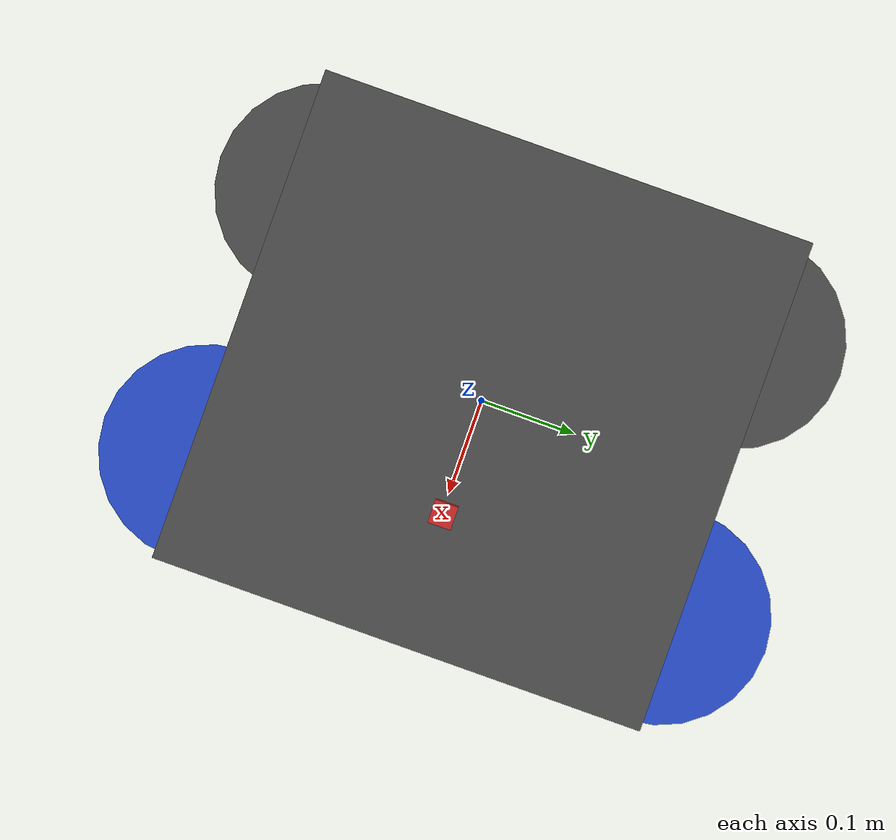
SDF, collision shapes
<?xml version='1.0'?>
<sdf version='1.5'>
  <model name='iris'>
    <pose>0 0 0.194923 0 0 0</pose>
     <link name="lidar_link">
      <pose>0.1 0 0.2 0 0 0</pose>
      <inertial>
        <mass>0.0001</mass>  <!-- 小质量 -->
        <inertia>
          <ixx>0.00001</ixx>
          <ixy>0</ixy>
          <ixz>0</ixz>
          <iyy>0.00001</iyy>
          <iyz>0</iyz>
          <izz>0.00001</izz>
        </inertia>
      </inertial>

      <collision name="front_camera_collision">
        <geometry>
          <box>
            <size>0.02 0.02 0.02</size>  <!-- 小碰撞盒 -->
          </box>
        </geometry>
      </collision>
      <visual name="front_camera_visual">
        <geometry>
          <box>
            <size>0.02 0.02 0.02</size>
          </box>
        </geometry>
        <material>
          <script>
            <name>Gazebo/Red</name>
            <uri>file://media/materials/scripts/gazebo.material</uri>
          </script>
        </material>
      </visual>
       <sensor name="lidar_sensor" type="ray">
        <pose>0 0 0 0 0 0</pose>
        <visualize>false</visualize>
        <update_rate>20</update_rate>
        <ray>
          <scan>
            <horizontal>
              <samples>720</samples>
              <resolution>1</resolution>
              <min_angle>-3.14</min_angle>
              <max_angle>3.14</max_angle>
            </horizontal>
            <vertical>
              <samples>21</samples>
              <resolution>1</resolution>
              <min_angle>-0.2618</min_angle>
              <max_angle>0.2618</max_angle>
            </vertical>
          </scan>
          <range>
            <min>0.1</min>
            <max>10.0</max>
            <resolution>0.01</resolution>
          </range>
          <noise>
            <type>gaussian</type>
            <mean>0.0</mean>
            <stddev>0.01</stddev>
          </noise>
        </ray>
        <plugin name="gazebo_ros_gpu_laser_controller" filename="libgazebo_ros_gpu_laser.so">
          <topicName>/scan</topicName>
          <frameName>/lidar_link</frameName>
        </plugin>
      </sensor>
    </link>

    <joint name="front_camera_joint" type="fixed">
      <parent>base_link</parent>
      <child>lidar_link</child>
    </joint>

    <link name='base_link'>
      <velocity_decay>
        <linear>0.0</linear>
        <angular>0.0</angular>
      </velocity_decay>
      <inertial>
        <pose>0 0 0 0 0 0</pose>
        <mass>1.5</mass>
        <inertia>
          <ixx>0.008</ixx>
          <ixy>0</ixy>
          <ixz>0</ixz>
          <iyy>0.015</iyy>
          <iyz>0</iyz>
          <izz>0.017</izz>
        </inertia>
      </inertial>
      <collision name='base_link_collision'>
        <pose>0 0 -0.08 0 0 0</pose>
        <geometry>
          <box>
            <size>0.47 0.47 0.23</size>
          </box>
        </geometry>
        <surface>
          <contact>
            <ode>
              <max_vel>100.0</max_vel>
              <min_depth>0.001</min_depth>
            </ode>
          </contact>
          <friction>
            <ode>
              <mu>1000.0</mu>
              <mu2>1000.0</mu2>
            </ode>
          </friction>
        </surface>
      </collision>
      <visual name='base_link_visual'>
        <geometry>
          <mesh>
            <uri>model://iris_with_standoffs/meshes/iris.dae</uri>
          </mesh>
        </geometry>
        <material>
          <script>
            <name>Gazebo/DarkGrey</name>
            <uri>file://media/materials/scripts/gazebo.material</uri>
          </script>
        </material>
      </visual>

      <visual name='front_left_leg_visual'>
        <pose>0.123 0.22 -0.11 0 0 0</pose>
        <geometry>
          <cylinder>
            <radius>0.005</radius>
            <length>0.17</length>
          </cylinder>
        </geometry>
        <material>
          <script>
            <name>Gazebo/FlatBlack</name>
            <uri>file://media/materials/scripts/gazebo.material</uri>
          </script>
        </material>
      </visual>
      <visual name='front_right_leg_visual'>
        <pose>0.123 -0.22 -0.11 0 0 0</pose>
        <geometry>
          <cylinder>
            <radius>0.005</radius>
            <length>0.17</length>
          </cylinder>
        </geometry>
        <material>
          <script>
            <name>Gazebo/FlatBlack</name>
            <uri>file://media/materials/scripts/gazebo.material</uri>
          </script>
        </material>
      </visual>
      <visual name='rear_left_leg_visual'>
        <pose>-0.140 0.21 -0.11 0 0 0</pose>
        <geometry>
          <cylinder>
            <radius>0.005</radius>
            <length>0.17</length>
          </cylinder>
        </geometry>
        <material>
          <script>
            <name>Gazebo/FlatBlack</name>
            <uri>file://media/materials/scripts/gazebo.material</uri>
          </script>
        </material>
      </visual>
      <visual name='rear_right_leg_visual'>
        <pose>-0.140 -0.21 -0.11 0 0 0</pose>
        <geometry>
          <cylinder>
            <radius>0.005</radius>
            <length>0.17</length>
          </cylinder>
        </geometry>
        <material>
          <script>
            <name>Gazebo/FlatBlack</name>
            <uri>file://media/materials/scripts/gazebo.material</uri>
          </script>
        </material>
      </visual>
    </link>
    <link name='iris/ground_truth/odometry_sensorgt_link'>
      <pose>0 0 0 0 -0 0</pose>
      <inertial>
        <pose>0 0 0 0 -0 0</pose>
        <mass>0.15</mass>
        <inertia>
          <ixx>0.0001</ixx>
          <ixy>0</ixy>
          <ixz>0</ixz>
          <iyy>0.0002</iyy>
          <iyz>0</iyz>
          <izz>0.0002</izz>
        </inertia>
      </inertial>
    </link>
    <joint name='iris/ground_truth/odometry_sensorgt_joint' type='revolute'>
      <child>iris/ground_truth/odometry_sensorgt_link</child>
      <parent>base_link</parent>
      <axis>
        <xyz>0 0 1</xyz>
        <limit>
          <lower>0</lower>
          <upper>0</upper>
          <effort>0</effort>
          <velocity>0</velocity>
        </limit>
        <dynamics>
          <damping>1.0</damping>
        </dynamics>
        <use_parent_model_frame>1</use_parent_model_frame>
      </axis>
      <physics>
        <ode>
          <implicit_spring_damper>1</implicit_spring_damper>
        </ode>
      </physics>
    </joint>
    <link name='iris/imu_link'>
      <inertial>
        <pose>0 0 0 0 0 0</pose>
        <mass>0.15</mass>
        <inertia>
          <ixx>0.00001</ixx>
          <ixy>0</ixy>
          <ixz>0</ixz>
          <iyy>0.00002</iyy>
          <iyz>0</iyz>
          <izz>0.00002</izz>
        </inertia>
      </inertial>
      <sensor name="imu_sensor" type="imu">
        <pose>0 0 0 3.141593 0 0</pose>
        <always_on>1</always_on>
        <update_rate>1000.0</update_rate>
      </sensor>
    </link>
    <joint name='iris/imu_joint' type='revolute'>
      <child>iris/imu_link</child>
      <parent>base_link</parent>
      <axis>
        <xyz>0 0 1</xyz>
        <limit>
          <lower>0</lower>
          <upper>0</upper>
          <effort>0</effort>
          <velocity>0</velocity>
        </limit>
        <dynamics>
          <damping>1.0</damping>
        </dynamics>
        <use_parent_model_frame>1</use_parent_model_frame>
      </axis>
      <physics>
        <ode>
          <implicit_spring_damper>1</implicit_spring_damper>
        </ode>
      </physics>
    </joint>
    <link name='rotor_0'>
      <pose>0.13 -0.22 0.023 0 -0 0</pose>
      <inertial>
        <pose>0 0 0 0 -0 0</pose>
        <mass>0.025</mass>
        <inertia>
          <ixx>9.75e-06</ixx>
          <ixy>0</ixy>
          <ixz>0</ixz>
          <iyy>0.000166704</iyy>
          <iyz>0</iyz>
          <izz>0.000167604</izz>
        </inertia>
      </inertial>
      <collision name='rotor_0_collision'>
        <pose>0 0 0 0 -0 0</pose>
        <geometry>
          <cylinder>
            <length>0.005</length>
            <radius>0.1</radius>
          </cylinder>
        </geometry>
        <surface>
          <contact>
            <ode/>
          </contact>
          <friction>
            <ode/>
          </friction>
        </surface>
      </collision>
      <visual name='rotor_0_visual'>
        <pose>0 0 0 0 -0 0</pose>
        <geometry>
          <mesh>
            <scale>1 1 1</scale>
            <uri>model://iris_with_standoffs/meshes/iris_prop_ccw.dae</uri>
          </mesh>
        </geometry>
        <material>
          <script>
            <name>Gazebo/Blue</name>
            <uri>file://media/materials/scripts/gazebo.material</uri>
          </script>
        </material>
      </visual>
      <gravity>1</gravity>
      <velocity_decay/>
      <self_collide>0</self_collide>
    </link>
    <joint name='rotor_0_joint' type='revolute'>
      <child>rotor_0</child>
      <parent>base_link</parent>
      <axis>
        <xyz>0 0 1</xyz>
        <limit>
          <lower>-100</lower>
          <upper>100</upper>
           <effort>100.0</effort>
      <velocity>1000.0</velocity>
        </limit>
        <dynamics>
          <damping>0.004</damping>
        </dynamics>
        <use_parent_model_frame>1</use_parent_model_frame>
      </axis>
      <physics>
        <ode>
          <implicit_spring_damper>1</implicit_spring_damper>
        </ode>
      </physics>
    </joint>
    <link name='rotor_1'>
      <pose>-0.13 0.2 0.023 0 -0 0</pose>
      <inertial>
        <pose>0 0 0 0 -0 0</pose>
        <mass>0.025</mass>
        <inertia>
          <ixx>9.75e-06</ixx>
          <ixy>0</ixy>
          <ixz>0</ixz>
          <iyy>0.000166704</iyy>
          <iyz>0</iyz>
          <izz>0.000167604</izz>
        </inertia>
      </inertial>
      <collision name='rotor_1_collision'>
        <pose>0 0 0 0 -0 0</pose>
        <geometry>
          <cylinder>
            <length>0.005</length>
            <radius>0.1</radius>
          </cylinder>
        </geometry>
        <surface>
          <contact>
            <ode/>
          </contact>
          <friction>
            <ode/>
          </friction>
        </surface>
      </collision>
      <visual name='rotor_1_visual'>
        <pose>0 0 0 0 -0 0</pose>
        <geometry>
          <mesh>
            <scale>1 1 1</scale>
            <uri>model://iris_with_standoffs/meshes/iris_prop_ccw.dae</uri>
          </mesh>
        </geometry>
        <material>
          <script>
            <name>Gazebo/DarkGrey</name>
            <uri>file://media/materials/scripts/gazebo.material</uri>
          </script>
        </material>
      </visual>
      <gravity>1</gravity>
      <velocity_decay/>
      <self_collide>0</self_collide>
    </link>
    <joint name='rotor_1_joint' type='revolute'>
      <child>rotor_1</child>
      <parent>base_link</parent>
      <axis>
        <xyz>0 0 1</xyz>
        <limit>
          <lower>-100</lower>
          <upper>100</upper>
          <effort>100.0</effort>
          <velocity>1000.0</velocity>
        </limit>
        <dynamics>
          <damping>0.004</damping>
        </dynamics>
        <use_parent_model_frame>1</use_parent_model_frame>
      </axis>
      <physics>
        <ode>
          <implicit_spring_damper>1</implicit_spring_damper>
        </ode>
      </physics>
    </joint>
    <link name='rotor_2'>
      <pose>0.13 0.22 0.023 0 -0 0</pose>
      <inertial>
        <pose>0 0 0 0 -0 0</pose>
        <mass>0.025</mass>
        <inertia>
          <ixx>9.75e-06</ixx>
          <ixy>0</ixy>
          <ixz>0</ixz>
          <iyy>0.000166704</iyy>
          <iyz>0</iyz>
          <izz>0.000167604</izz>
        </inertia>
      </inertial>
      <collision name='rotor_2_collision'>
        <pose>0 0 0 0 -0 0</pose>
        <geometry>
          <cylinder>
            <length>0.005</length>
            <radius>0.1</radius>
          </cylinder>
        </geometry>
        <surface>
          <contact>
            <ode/>
          </contact>
          <friction>
            <ode/>
          </friction>
        </surface>
      </collision>
      <visual name='rotor_2_visual'>
        <pose>0 0 0 0 -0 0</pose>
        <geometry>
          <mesh>
            <scale>1 1 1</scale>
            <uri>model://iris_with_standoffs/meshes/iris_prop_cw.dae</uri>
          </mesh>
        </geometry>
        <material>
          <script>
            <name>Gazebo/Blue</name>
            <uri>file://media/materials/scripts/gazebo.material</uri>
          </script>
        </material>
      </visual>
      <gravity>1</gravity>
      <velocity_decay/>
      <self_collide>0</self_collide>
    </link>
    <joint name='rotor_2_joint' type='revolute'>
      <child>rotor_2</child>
      <parent>base_link</parent>
      <axis>
        <xyz>0 0 1</xyz>
        <limit>
          <lower>-100</lower>
          <upper>100</upper>
          <effort>100.0</effort>
          <velocity>1000.0</velocity>
        </limit>
        <dynamics>
          <damping>0.004</damping>
        </dynamics>
        <use_parent_model_frame>1</use_parent_model_frame>
      </axis>
      <physics>
        <ode>
          <implicit_spring_damper>1</implicit_spring_damper>
        </ode>
      </physics>
    </joint>
    <link name='rotor_3'>
      <pose>-0.13 -0.2 0.023 0 -0 0</pose>
      <inertial>
        <pose>0 0 0 0 -0 0</pose>
        <mass>0.025</mass>
        <inertia>
          <ixx>9.75e-06</ixx>
          <ixy>0</ixy>
          <ixz>0</ixz>
          <iyy>0.000166704</iyy>
          <iyz>0</iyz>
          <izz>0.000167604</izz>
        </inertia>
      </inertial>
      <collision name='rotor_3_collision'>
        <pose>0 0 0 0 -0 0</pose>
        <geometry>
          <cylinder>
            <length>0.005</length>
            <radius>0.1</radius>
          </cylinder>
        </geometry>
        <surface>
          <contact>
            <ode/>
          </contact>
          <friction>
            <ode/>
          </friction>
        </surface>
      </collision>
      <visual name='rotor_3_visual'>
        <pose>0 0 0 0 -0 0</pose>
        <geometry>
          <mesh>
            <scale>1 1 1</scale>
            <uri>model://iris_with_standoffs/meshes/iris_prop_cw.dae</uri>
          </mesh>
        </geometry>
        <material>
          <script>
            <name>Gazebo/DarkGrey</name>
            <uri>file://media/materials/scripts/gazebo.material</uri>
          </script>
        </material>
      </visual>
      <gravity>1</gravity>
      <velocity_decay/>
      <self_collide>0</self_collide>
    </link>
    <joint name='rotor_3_joint' type='revolute'>
      <child>rotor_3</child>
      <parent>base_link</parent>
      <axis>
        <xyz>0 0 1</xyz>
        <limit>
          <lower>-100</lower>
          <upper>100</upper>
           <effort>100.0</effort>
      <velocity>1000.0</velocity>
        </limit>
        <dynamics>
          <damping>0.004</damping>
        </dynamics>
        <use_parent_model_frame>1</use_parent_model_frame>
      </axis>
      <physics>
        <ode>
          <implicit_spring_damper>1</implicit_spring_damper>
        </ode>
      </physics>
    </joint>
    <static>0</static>
  </model>
</sdf>
